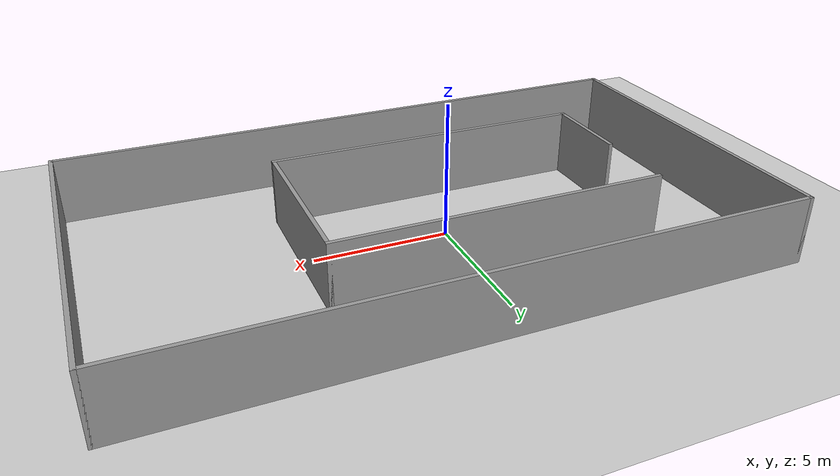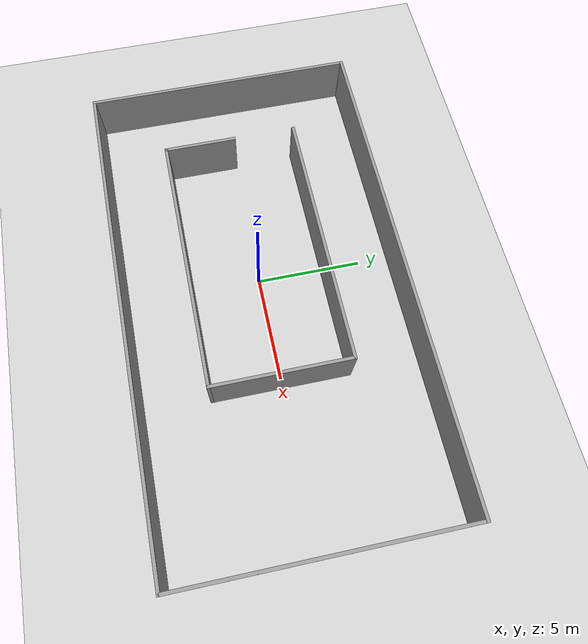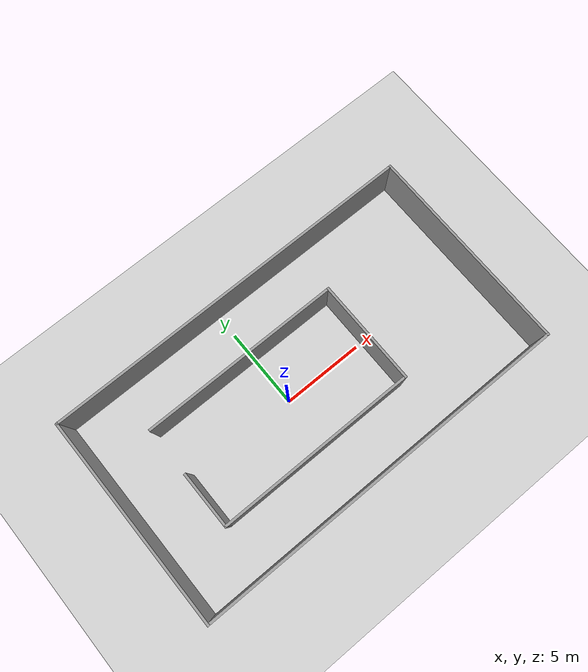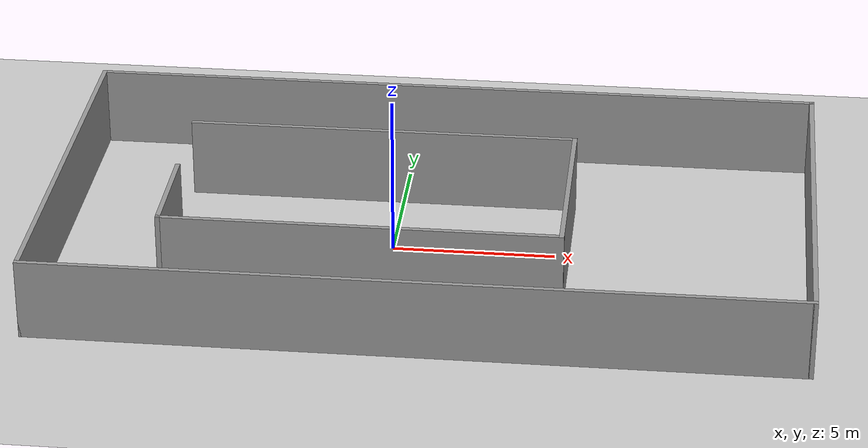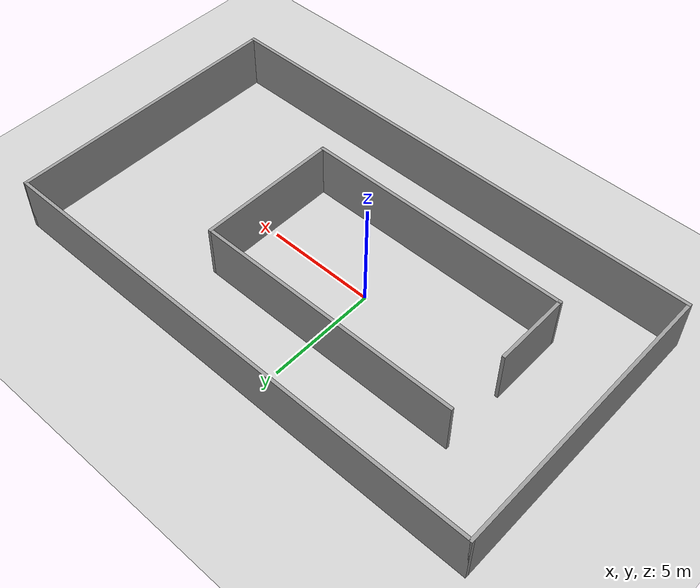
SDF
<sdf version="1.7">
 <world name="default">
  <light name="sun" type="directional">
   <pose>0 0 10 0 -0 0</pose>
   <diffuse>0.8 0.8 0.8 1</diffuse>
   <specular>0.2 0.2 0.2 1</specular>
   <attenuation>
    <range>1000</range>
    <constant>0.9</constant>
    <linear>0.01</linear>
    <quadratic>0.001</quadratic>
   </attenuation>
   <direction>-0.5 0.1 -0.9</direction>
   <spot><inner_angle>0</inner_angle><outer_angle>0</outer_angle><falloff>0</falloff></spot>
  </light>
  <model name="ground_plane">
   <static>1</static>
   <link name="link">
    <collision name="collision">
     <geometry><plane><normal>0 0 1</normal><size>100 100</size></plane></geometry>
     <surface><friction><ode><mu>100</mu><mu2>50</mu2></ode></friction></surface>
    </collision>
    <visual name="visual">
     <cast_shadows>0</cast_shadows>
     <geometry><plane><normal>0 0 1</normal><size>100 100</size></plane></geometry>
     <material>
      <script><uri>file://media/materials/scripts/gazebo.material</uri><name>Gazebo/Grey</name></script>
     </material>
    </visual>
   </link>
  </model>
  <gravity>0 0 -9.8</gravity>
  <magnetic_field>6e-06 2.3e-05 -4.2e-05</magnetic_field>
  <atmosphere type="adiabatic"/>
  <physics type="ode">
   <max_step_size>0.001</max_step_size>
   <real_time_factor>1</real_time_factor>
   <real_time_update_rate>1000</real_time_update_rate>
  </physics>
  <scene><ambient>0.4 0.4 0.4 1</ambient><background>0.7 0.7 0.7 1</background><shadows>1</shadows></scene>
  <spherical_coordinates>
   <surface_model>EARTH_WGS84</surface_model>
   <latitude_deg>0</latitude_deg>
   <longitude_deg>0</longitude_deg>
   <elevation>0</elevation>
   <heading_deg>0</heading_deg>
  </spherical_coordinates>
  <model name="box_house">
   <pose>1.26106 0.047986 0 0 -0 0</pose>
   <link name="Wall_1">
    <collision name="Wall_1_Collision">
     <geometry><box><size>13 0.15 2.5</size></box></geometry>
     <pose>0 0 1.25 0 -0 0</pose>
    </collision>
    <visual name="Wall_1_Visual">
     <pose>0 0 1.25 0 -0 0</pose>
     <geometry><box><size>13 0.15 2.5</size></box></geometry>
     <material>
      <script><uri>file://media/materials/scripts/gazebo.material</uri><name>Gazebo/Grey</name></script>
      <ambient>1 1 1 1</ambient>
     </material>
     <meta><layer>0</layer></meta>
    </visual>
    <pose>-11.5447 -0 0 0 -0 -1.5708</pose>
   </link>
   <link name="Wall_12">
    <collision name="Wall_12_Collision">
     <geometry><box><size>6.5 0.15 2.5</size></box></geometry>
     <pose>0 0 1.25 0 -0 0</pose>
    </collision>
    <visual name="Wall_12_Visual">
     <pose>0 0 1.25 0 -0 0</pose>
     <geometry><box><size>6.5 0.15 2.5</size></box></geometry>
     <material>
      <script><uri>file://media/materials/scripts/gazebo.material</uri><name>Gazebo/Grey</name></script>
      <ambient>1 1 1 1</ambient>
     </material>
     <meta><layer>0</layer></meta>
    </visual>
    <pose>4.12492 -0.103088 0 0 -0 -1.5708</pose>
   </link>
   <link name="Wall_13">
    <collision name="Wall_13_Collision">
     <geometry><box><size>12.25 0.15 2.5</size></box></geometry>
     <pose>0 0 1.25 0 -0 0</pose>
    </collision>
    <visual name="Wall_13_Visual">
     <pose>0 0 1.25 0 -0 0</pose>
     <geometry><box><size>12.25 0.15 2.5</size></box></geometry>
     <material>
      <script><uri>file://media/materials/scripts/gazebo.material</uri><name>Gazebo/Grey</name></script>
      <ambient>1 1 1 1</ambient>
     </material>
     <meta><layer>0</layer></meta>
    </visual>
    <pose>-1.92508 -3.27809 0 0 -0 3.14159</pose>
   </link>
   <link name="Wall_14">
    <collision name="Wall_14_Collision">
     <geometry><box><size>3.5 0.15 2.5</size></box></geometry>
     <pose>0 0 1.25 0 -0 0</pose>
    </collision>
    <visual name="Wall_14_Visual">
     <pose>0 0 1.25 0 -0 0</pose>
     <geometry><box><size>3.5 0.15 2.5</size></box></geometry>
     <material>
      <script><uri>file://media/materials/scripts/gazebo.material</uri><name>Gazebo/Grey</name></script>
      <ambient>1 1 1 1</ambient>
     </material>
     <meta><layer>0</layer></meta>
    </visual>
    <pose>-7.97508 -1.60309 0 0 -0 1.5708</pose>
   </link>
   <link name="Wall_2">
    <collision name="Wall_2_Collision">
     <geometry><box><size>23.2394 0.15 2.5</size></box></geometry>
     <pose>0 0 1.25 0 -0 0</pose>
    </collision>
    <visual name="Wall_2_Visual">
     <pose>0 0 1.25 0 -0 0</pose>
     <geometry><box><size>23.2394 0.15 2.5</size></box></geometry>
     <material>
      <script><uri>file://media/materials/scripts/gazebo.material</uri><name>Gazebo/Grey</name></script>
      <ambient>1 1 1 1</ambient>
     </material>
     <meta><layer>0</layer></meta>
    </visual>
    <pose>-0 -6.425 0 0 -0 0</pose>
   </link>
   <link name="Wall_3">
    <collision name="Wall_3_Collision">
     <geometry><box><size>13 0.15 2.5</size></box></geometry>
     <pose>0 0 1.25 0 -0 0</pose>
    </collision>
    <visual name="Wall_3_Visual">
     <pose>0 0 1.25 0 -0 0</pose>
     <geometry><box><size>13 0.15 2.5</size></box></geometry>
     <material>
      <script><uri>file://media/materials/scripts/gazebo.material</uri><name>Gazebo/Grey</name></script>
      <ambient>1 1 1 1</ambient>
     </material>
     <meta><layer>0</layer></meta>
    </visual>
    <pose>11.5447 -0 0 0 -0 1.5708</pose>
   </link>
   <link name="Wall_6">
    <collision name="Wall_6_Collision">
     <geometry><box><size>23.2394 0.15 2.5</size></box></geometry>
     <pose>0 0 1.25 0 -0 0</pose>
    </collision>
    <visual name="Wall_6_Visual">
     <pose>0 0 1.25 0 -0 0</pose>
     <geometry><box><size>23.2394 0.15 2.5</size></box></geometry>
     <material>
      <script><uri>file://media/materials/scripts/gazebo.material</uri><name>Gazebo/Grey</name></script>
      <ambient>1 1 1 1</ambient>
     </material>
     <meta><layer>0</layer></meta>
    </visual>
    <pose>-0 6.425 0 0 -0 0</pose>
   </link>
   <link name="Wall_8">
    <collision name="Wall_8_Collision">
     <geometry><box><size>12.25 0.15 2.5</size></box></geometry>
     <pose>0 0 1.25 0 -0 0</pose>
    </collision>
    <visual name="Wall_8_Visual">
     <pose>0 0 1.25 0 -0 0</pose>
     <geometry><box><size>12.25 0.15 2.5</size></box></geometry>
     <material>
      <script><uri>file://media/materials/scripts/gazebo.material</uri><name>Gazebo/Grey</name></script>
      <ambient>1 1 1 1</ambient>
     </material>
     <meta><layer>0</layer></meta>
    </visual>
    <pose>-1.92508 3.07191 0 0 -0 0</pose>
   </link>
   <static>1</static>
  </model>
 </world>
</sdf>
